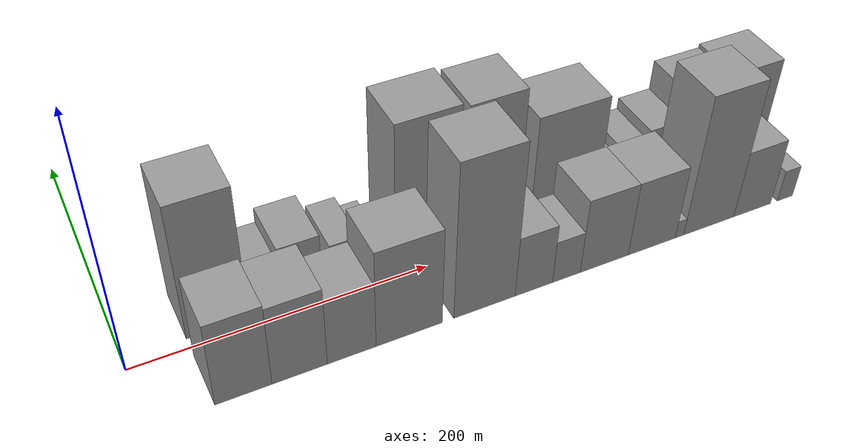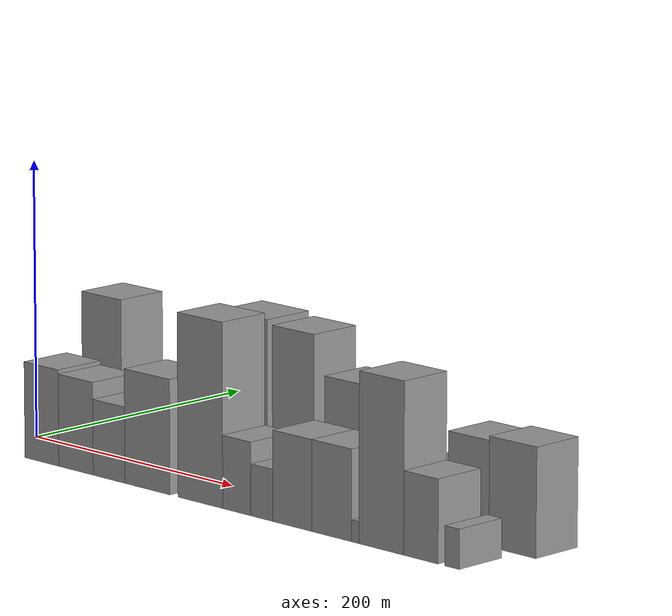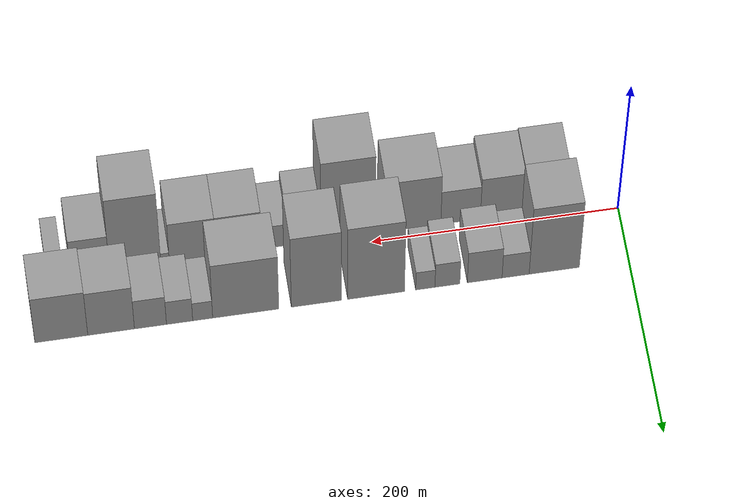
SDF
<sdf version="1.6">
 <world name="default">
  <scene>
   <sky><clouds><speed>12</speed></clouds></sky>
   <ambient>0.4 0.4 0.4 1</ambient>
   <background>0.7 0.7 0.7 1</background>
   <shadows>1</shadows>
  </scene>
  <gravity>0 0 -9.8066</gravity>
  <magnetic_field>6e-06 2.3e-05 -4.2e-05</magnetic_field>
  <physics default="0" name="default_physics" type="ode">
   <ode>
    <solver>
     <type>quick</type>
     <iters>10</iters>
     <sor>1.0</sor>
     <use_dynamic_moi_rescaling>0</use_dynamic_moi_rescaling>
    </solver>
    <constraints>
     <cfm>0</cfm>
     <erp>0.2</erp>
     <contact_max_correcting_vel>100</contact_max_correcting_vel>
     <contact_surface_layer>0.001</contact_surface_layer>
    </constraints>
   </ode>
   <max_step_size>0.004</max_step_size>
   <real_time_factor>1</real_time_factor>
   <real_time_update_rate>250</real_time_update_rate>
  </physics>
  <light name="sun" type="directional">
   <pose>0 0 10 0 0 0</pose>
   <diffuse>0.8 0.8 0.8 1</diffuse>
   <specular>0.2 0.2 0.2 1</specular>
   <attenuation>
    <range>1000</range>
    <constant>0.9</constant>
    <linear>0.01</linear>
    <quadratic>0.001</quadratic>
   </attenuation>
   <direction>-0.5 0.1 -0.9</direction>
  </light>
  <model name="building_1">
   <static>1</static>
   <pose>60.2387 27.5000 0 0.000000 0.000000 1.570796</pose>
   <link name="link">
    <pose>0 0 55.50 0 0 0</pose>
    <collision name="collision"><geometry><box><size>40.0000 40.4774 111.0000</size></box></geometry></collision>
    <visual name="visual">
     <cast_shadows>0</cast_shadows>
     <geometry><box><size>40.0000 40.4774 111.0000</size></box></geometry>
     <material>
      <script>
       <uri>model://grey_wall/materials/scripts</uri>
       <uri>model://grey_wall/materials/textures</uri>
       <name>vrc/grey_wall</name>
      </script>
     </material>
    </visual>
   </link>
  </model>
  <model name="building_2">
   <static>1</static>
   <pose>91.4213 27.5000 0 0.000000 0.000000 1.570796</pose>
   <link name="link">
    <pose>0 0 19.50 0 0 0</pose>
    <collision name="collision"><geometry><box><size>40.0000 21.8878 39.0000</size></box></geometry></collision>
    <visual name="visual">
     <cast_shadows>0</cast_shadows>
     <geometry><box><size>40.0000 21.8878 39.0000</size></box></geometry>
     <material>
      <script>
       <uri>model://grey_wall/materials/scripts</uri>
       <uri>model://grey_wall/materials/textures</uri>
       <name>vrc/grey_wall</name>
      </script>
     </material>
    </visual>
   </link>
  </model>
  <model name="building_3">
   <static>1</static>
   <pose>116.3525 27.5000 0 0.000000 0.000000 1.570796</pose>
   <link name="link">
    <pose>0 0 25.50 0 0 0</pose>
    <collision name="collision"><geometry><box><size>40.0000 27.9747 51.0000</size></box></geometry></collision>
    <visual name="visual">
     <cast_shadows>0</cast_shadows>
     <geometry><box><size>40.0000 27.9747 51.0000</size></box></geometry>
     <material>
      <script>
       <uri>model://grey_wall/materials/scripts</uri>
       <uri>model://grey_wall/materials/textures</uri>
       <name>vrc/grey_wall</name>
      </script>
     </material>
    </visual>
   </link>
  </model>
  <model name="building_4">
   <static>1</static>
   <pose>146.3809 27.5000 0 0.000000 0.000000 1.570796</pose>
   <link name="link">
    <pose>0 0 19.50 0 0 0</pose>
    <collision name="collision"><geometry><box><size>40.0000 20.0820 39.0000</size></box></geometry></collision>
    <visual name="visual">
     <cast_shadows>0</cast_shadows>
     <geometry><box><size>40.0000 20.0820 39.0000</size></box></geometry>
     <material>
      <script>
       <uri>model://grey_wall/materials/scripts</uri>
       <uri>model://grey_wall/materials/textures</uri>
       <name>vrc/grey_wall</name>
      </script>
     </material>
    </visual>
   </link>
  </model>
  <model name="building_5">
   <static>1</static>
   <pose>164.1756 27.5000 0 0.000000 0.000000 1.570796</pose>
   <link name="link">
    <pose>0 0 15.00 0 0 0</pose>
    <collision name="collision"><geometry><box><size>40.0000 15.5075 30.0000</size></box></geometry></collision>
    <visual name="visual">
     <cast_shadows>0</cast_shadows>
     <geometry><box><size>40.0000 15.5075 30.0000</size></box></geometry>
     <material>
      <script>
       <uri>model://grey_wall/materials/scripts</uri>
       <uri>model://grey_wall/materials/textures</uri>
       <name>vrc/grey_wall</name>
      </script>
     </material>
    </visual>
   </link>
  </model>
  <model name="building_6">
   <static>1</static>
   <pose>203.7467 27.5000 0 0.000000 0.000000 1.570796</pose>
   <link name="link">
    <pose>0 0 60.00 0 0 0</pose>
    <collision name="collision"><geometry><box><size>40.0000 45.6347 120.0000</size></box></geometry></collision>
    <visual name="visual">
     <cast_shadows>0</cast_shadows>
     <geometry><box><size>40.0000 45.6347 120.0000</size></box></geometry>
     <material>
      <script>
       <uri>model://grey_wall/materials/scripts</uri>
       <uri>model://grey_wall/materials/textures</uri>
       <name>vrc/grey_wall</name>
      </script>
     </material>
    </visual>
   </link>
  </model>
  <model name="building_7">
   <static>1</static>
   <pose>251.6708 27.5000 0 0.000000 0.000000 1.570796</pose>
   <link name="link">
    <pose>0 0 58.50 0 0 0</pose>
    <collision name="collision"><geometry><box><size>40.0000 40.2136 117.0000</size></box></geometry></collision>
    <visual name="visual">
     <cast_shadows>0</cast_shadows>
     <geometry><box><size>40.0000 40.2136 117.0000</size></box></geometry>
     <material>
      <script>
       <uri>model://grey_wall/materials/scripts</uri>
       <uri>model://grey_wall/materials/textures</uri>
       <name>vrc/grey_wall</name>
      </script>
     </material>
    </visual>
   </link>
  </model>
  <model name="building_8">
   <static>1</static>
   <pose>308.2636 27.5000 0 0.000000 0.000000 1.570796</pose>
   <link name="link">
    <pose>0 0 45.00 0 0 0</pose>
    <collision name="collision"><geometry><box><size>40.0000 52.9719 90.0000</size></box></geometry></collision>
    <visual name="visual">
     <cast_shadows>0</cast_shadows>
     <geometry><box><size>40.0000 52.9719 90.0000</size></box></geometry>
     <material>
      <script>
       <uri>model://grey_wall/materials/scripts</uri>
       <uri>model://grey_wall/materials/textures</uri>
       <name>vrc/grey_wall</name>
      </script>
     </material>
    </visual>
   </link>
  </model>
  <model name="building_9">
   <static>1</static>
   <pose>342.7363 27.5000 0 0.000000 0.000000 1.570796</pose>
   <link name="link">
    <pose>0 0 15.00 0 0 0</pose>
    <collision name="collision"><geometry><box><size>40.0000 15.9735 30.0000</size></box></geometry></collision>
    <visual name="visual">
     <cast_shadows>0</cast_shadows>
     <geometry><box><size>40.0000 15.9735 30.0000</size></box></geometry>
     <material>
      <script>
       <uri>model://grey_wall/materials/scripts</uri>
       <uri>model://grey_wall/materials/textures</uri>
       <name>vrc/grey_wall</name>
      </script>
     </material>
    </visual>
   </link>
  </model>
  <model name="building_10">
   <static>1</static>
   <pose>361.2020 27.5000 0 0.000000 0.000000 1.570796</pose>
   <link name="link">
    <pose>0 0 19.50 0 0 0</pose>
    <collision name="collision"><geometry><box><size>40.0000 20.9579 39.0000</size></box></geometry></collision>
    <visual name="visual">
     <cast_shadows>0</cast_shadows>
     <geometry><box><size>40.0000 20.9579 39.0000</size></box></geometry>
     <material>
      <script>
       <uri>model://grey_wall/materials/scripts</uri>
       <uri>model://grey_wall/materials/textures</uri>
       <name>vrc/grey_wall</name>
      </script>
     </material>
    </visual>
   </link>
  </model>
  <model name="building_11">
   <static>1</static>
   <pose>384.4476 27.5000 0 0.000000 0.000000 1.570796</pose>
   <link name="link">
    <pose>0 0 24.00 0 0 0</pose>
    <collision name="collision"><geometry><box><size>40.0000 25.5332 48.0000</size></box></geometry></collision>
    <visual name="visual">
     <cast_shadows>0</cast_shadows>
     <geometry><box><size>40.0000 25.5332 48.0000</size></box></geometry>
     <material>
      <script>
       <uri>model://grey_wall/materials/scripts</uri>
       <uri>model://grey_wall/materials/textures</uri>
       <name>vrc/grey_wall</name>
      </script>
     </material>
    </visual>
   </link>
  </model>
  <model name="building_12">
   <static>1</static>
   <pose>415.8164 27.5000 0 0.000000 0.000000 1.570796</pose>
   <link name="link">
    <pose>0 0 36.00 0 0 0</pose>
    <collision name="collision"><geometry><box><size>40.0000 37.2044 72.0000</size></box></geometry></collision>
    <visual name="visual">
     <cast_shadows>0</cast_shadows>
     <geometry><box><size>40.0000 37.2044 72.0000</size></box></geometry>
     <material>
      <script>
       <uri>model://grey_wall/materials/scripts</uri>
       <uri>model://grey_wall/materials/textures</uri>
       <name>vrc/grey_wall</name>
      </script>
     </material>
    </visual>
   </link>
  </model>
  <model name="building_13">
   <static>1</static>
   <pose>455.4938 27.5000 0 0.000000 0.000000 1.570796</pose>
   <link name="link">
    <pose>0 0 37.50 0 0 0</pose>
    <collision name="collision"><geometry><box><size>40.0000 42.1505 75.0000</size></box></geometry></collision>
    <visual name="visual">
     <cast_shadows>0</cast_shadows>
     <geometry><box><size>40.0000 42.1505 75.0000</size></box></geometry>
     <material>
      <script>
       <uri>model://grey_wall/materials/scripts</uri>
       <uri>model://grey_wall/materials/textures</uri>
       <name>vrc/grey_wall</name>
      </script>
     </material>
    </visual>
   </link>
  </model>
  <model name="building_14">
   <static>1</static>
   <pose>57.6656 -27.5000 0 0.000000 0.000000 1.570796</pose>
   <link name="link">
    <pose>0 0 34.50 0 0 0</pose>
    <collision name="collision"><geometry><box><size>40.0000 35.3312 69.0000</size></box></geometry></collision>
    <visual name="visual">
     <cast_shadows>0</cast_shadows>
     <geometry><box><size>40.0000 35.3312 69.0000</size></box></geometry>
     <material>
      <script>
       <uri>model://grey_wall/materials/scripts</uri>
       <uri>model://grey_wall/materials/textures</uri>
       <name>vrc/grey_wall</name>
      </script>
     </material>
    </visual>
   </link>
  </model>
  <model name="building_15">
   <static>1</static>
   <pose>92.9802 -27.5000 0 0.000000 0.000000 1.570796</pose>
   <link name="link">
    <pose>0 0 33.00 0 0 0</pose>
    <collision name="collision"><geometry><box><size>40.0000 35.2980 66.0000</size></box></geometry></collision>
    <visual name="visual">
     <cast_shadows>0</cast_shadows>
     <geometry><box><size>40.0000 35.2980 66.0000</size></box></geometry>
     <material>
      <script>
       <uri>model://grey_wall/materials/scripts</uri>
       <uri>model://grey_wall/materials/textures</uri>
       <name>vrc/grey_wall</name>
      </script>
     </material>
    </visual>
   </link>
  </model>
  <model name="building_16">
   <static>1</static>
   <pose>126.6633 -27.5000 0 0.000000 0.000000 1.570796</pose>
   <link name="link">
    <pose>0 0 27.00 0 0 0</pose>
    <collision name="collision"><geometry><box><size>40.0000 32.0682 54.0000</size></box></geometry></collision>
    <visual name="visual">
     <cast_shadows>0</cast_shadows>
     <geometry><box><size>40.0000 32.0682 54.0000</size></box></geometry>
     <material>
      <script>
       <uri>model://grey_wall/materials/scripts</uri>
       <uri>model://grey_wall/materials/textures</uri>
       <name>vrc/grey_wall</name>
      </script>
     </material>
    </visual>
   </link>
  </model>
  <model name="building_17">
   <static>1</static>
   <pose>165.2017 -27.5000 0 0.000000 0.000000 1.570796</pose>
   <link name="link">
    <pose>0 0 40.50 0 0 0</pose>
    <collision name="collision"><geometry><box><size>40.0000 45.0086 81.0000</size></box></geometry></collision>
    <visual name="visual">
     <cast_shadows>0</cast_shadows>
     <geometry><box><size>40.0000 45.0086 81.0000</size></box></geometry>
     <material>
      <script>
       <uri>model://grey_wall/materials/scripts</uri>
       <uri>model://grey_wall/materials/textures</uri>
       <name>vrc/grey_wall</name>
      </script>
     </material>
    </visual>
   </link>
  </model>
  <model name="building_18">
   <static>1</static>
   <pose>217.6015 -27.5000 0 0.000000 0.000000 1.570796</pose>
   <link name="link">
    <pose>0 0 64.50 0 0 0</pose>
    <collision name="collision"><geometry><box><size>40.0000 43.7912 129.0000</size></box></geometry></collision>
    <visual name="visual">
     <cast_shadows>0</cast_shadows>
     <geometry><box><size>40.0000 43.7912 129.0000</size></box></geometry>
     <material>
      <script>
       <uri>model://grey_wall/materials/scripts</uri>
       <uri>model://grey_wall/materials/textures</uri>
       <name>vrc/grey_wall</name>
      </script>
     </material>
    </visual>
   </link>
  </model>
  <model name="building_19">
   <static>1</static>
   <pose>253.1836 -27.5000 0 0.000000 0.000000 1.570796</pose>
   <link name="link">
    <pose>0 0 25.50 0 0 0</pose>
    <collision name="collision"><geometry><box><size>40.0000 27.3729 51.0000</size></box></geometry></collision>
    <visual name="visual">
     <cast_shadows>0</cast_shadows>
     <geometry><box><size>40.0000 27.3729 51.0000</size></box></geometry>
     <material>
      <script>
       <uri>model://grey_wall/materials/scripts</uri>
       <uri>model://grey_wall/materials/textures</uri>
       <name>vrc/grey_wall</name>
      </script>
     </material>
    </visual>
   </link>
  </model>
  <model name="building_20">
   <static>1</static>
   <pose>277.2767 -27.5000 0 0.000000 0.000000 1.570796</pose>
   <link name="link">
    <pose>0 0 18.00 0 0 0</pose>
    <collision name="collision"><geometry><box><size>40.0000 20.8134 36.0000</size></box></geometry></collision>
    <visual name="visual">
     <cast_shadows>0</cast_shadows>
     <geometry><box><size>40.0000 20.8134 36.0000</size></box></geometry>
     <material>
      <script>
       <uri>model://grey_wall/materials/scripts</uri>
       <uri>model://grey_wall/materials/textures</uri>
       <name>vrc/grey_wall</name>
      </script>
     </material>
    </visual>
   </link>
  </model>
  <model name="building_21">
   <static>1</static>
   <pose>306.1324 -27.5000 0 0.000000 0.000000 1.570796</pose>
   <link name="link">
    <pose>0 0 31.50 0 0 0</pose>
    <collision name="collision"><geometry><box><size>40.0000 36.8979 63.0000</size></box></geometry></collision>
    <visual name="visual">
     <cast_shadows>0</cast_shadows>
     <geometry><box><size>40.0000 36.8979 63.0000</size></box></geometry>
     <material>
      <script>
       <uri>model://grey_wall/materials/scripts</uri>
       <uri>model://grey_wall/materials/textures</uri>
       <name>vrc/grey_wall</name>
      </script>
     </material>
    </visual>
   </link>
  </model>
  <model name="building_22">
   <static>1</static>
   <pose>343.2307 -27.5000 0 0.000000 0.000000 1.570796</pose>
   <link name="link">
    <pose>0 0 31.50 0 0 0</pose>
    <collision name="collision"><geometry><box><size>40.0000 37.2988 63.0000</size></box></geometry></collision>
    <visual name="visual">
     <cast_shadows>0</cast_shadows>
     <geometry><box><size>40.0000 37.2988 63.0000</size></box></geometry>
     <material>
      <script>
       <uri>model://grey_wall/materials/scripts</uri>
       <uri>model://grey_wall/materials/textures</uri>
       <name>vrc/grey_wall</name>
      </script>
     </material>
    </visual>
   </link>
  </model>
  <model name="building_23">
   <static>1</static>
   <pose>365.3004 -27.5000 0 0.000000 0.000000 1.570796</pose>
   <link name="link">
    <pose>0 0 7.50 0 0 0</pose>
    <collision name="collision"><geometry><box><size>40.0000 6.8405 15.0000</size></box></geometry></collision>
    <visual name="visual">
     <cast_shadows>0</cast_shadows>
     <geometry><box><size>40.0000 6.8405 15.0000</size></box></geometry>
     <material>
      <script>
       <uri>model://grey_wall/materials/scripts</uri>
       <uri>model://grey_wall/materials/textures</uri>
       <name>vrc/grey_wall</name>
      </script>
     </material>
    </visual>
   </link>
  </model>
  <model name="building_24">
   <static>1</static>
   <pose>389.2924 -27.5000 0 0.000000 0.000000 1.570796</pose>
   <link name="link">
    <pose>0 0 58.50 0 0 0</pose>
    <collision name="collision"><geometry><box><size>40.0000 41.1435 117.0000</size></box></geometry></collision>
    <visual name="visual">
     <cast_shadows>0</cast_shadows>
     <geometry><box><size>40.0000 41.1435 117.0000</size></box></geometry>
     <material>
      <script>
       <uri>model://grey_wall/materials/scripts</uri>
       <uri>model://grey_wall/materials/textures</uri>
       <name>vrc/grey_wall</name>
      </script>
     </material>
    </visual>
   </link>
  </model>
  <model name="building_25">
   <static>1</static>
   <pose>425.3748 -27.5000 0 0.000000 0.000000 1.570796</pose>
   <link name="link">
    <pose>0 0 28.50 0 0 0</pose>
    <collision name="collision"><geometry><box><size>40.0000 31.0214 57.0000</size></box></geometry></collision>
    <visual name="visual">
     <cast_shadows>0</cast_shadows>
     <geometry><box><size>40.0000 31.0214 57.0000</size></box></geometry>
     <material>
      <script>
       <uri>model://grey_wall/materials/scripts</uri>
       <uri>model://grey_wall/materials/textures</uri>
       <name>vrc/grey_wall</name>
      </script>
     </material>
    </visual>
   </link>
  </model>
  <model name="building_26">
   <static>1</static>
   <pose>453.4260 -27.5000 0 0.000000 0.000000 1.570796</pose>
   <link name="link">
    <pose>0 0 13.50 0 0 0</pose>
    <collision name="collision"><geometry><box><size>40.0000 13.0811 27.0000</size></box></geometry></collision>
    <visual name="visual">
     <cast_shadows>0</cast_shadows>
     <geometry><box><size>40.0000 13.0811 27.0000</size></box></geometry>
     <material>
      <script>
       <uri>model://grey_wall/materials/scripts</uri>
       <uri>model://grey_wall/materials/textures</uri>
       <name>vrc/grey_wall</name>
      </script>
     </material>
    </visual>
   </link>
  </model>
 </world>
</sdf>
